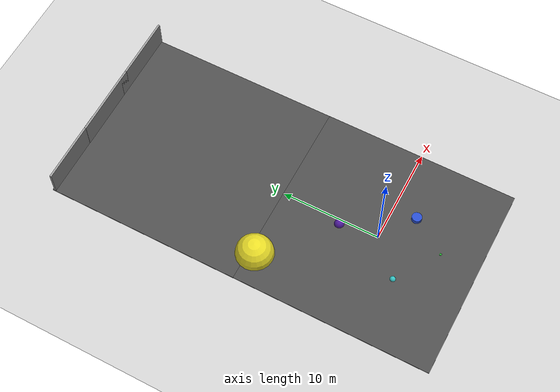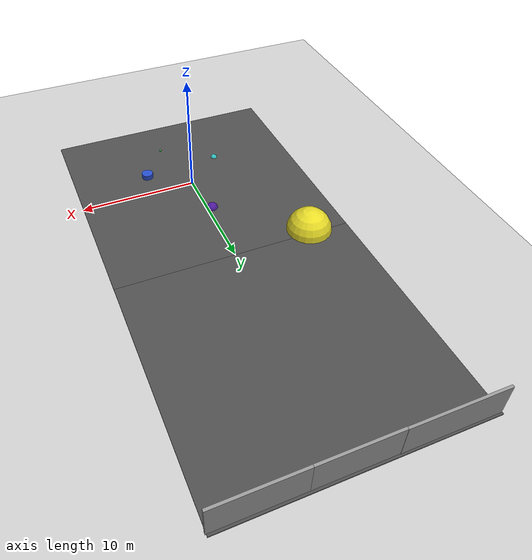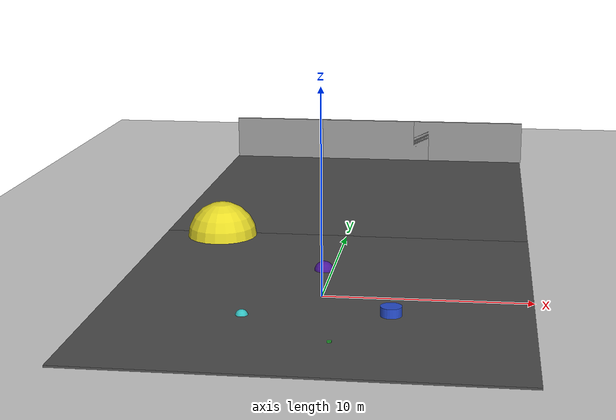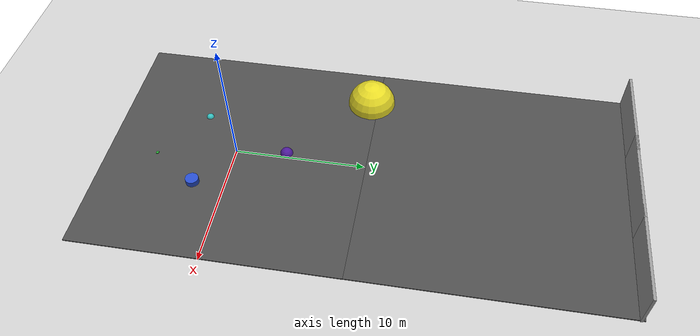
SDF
<sdf version="1.7">
 <world name="default">
  <light name="sun" type="directional">
   <pose>0 0 10 0 -0 0</pose>
   <diffuse>0.8 0.8 0.8 1</diffuse>
   <specular>0.2 0.2 0.2 1</specular>
   <attenuation>
    <range>1000</range>
    <constant>0.9</constant>
    <linear>0.01</linear>
    <quadratic>0.001</quadratic>
   </attenuation>
   <direction>-0.5 0.1 -0.9</direction>
   <spot><inner_angle>0</inner_angle><outer_angle>0</outer_angle><falloff>0</falloff></spot>
  </light>
  <model name="ground_plane">
   <static>1</static>
   <link name="link">
    <collision name="collision">
     <geometry><plane><normal>0 0 1</normal><size>100 100</size></plane></geometry>
     <surface>
      <contact><collide_bitmask>65535</collide_bitmask></contact>
      <friction><ode><mu>100</mu><mu2>50</mu2></ode></friction>
     </surface>
    </collision>
    <visual name="visual">
     <cast_shadows>0</cast_shadows>
     <geometry><plane><normal>0 0 1</normal><size>100 100</size></plane></geometry>
     <material>
      <script><uri>file://media/materials/scripts/gazebo.material</uri><name>Gazebo/Grey</name></script>
     </material>
    </visual>
   </link>
  </model>
  <gravity>0 0 -9.8</gravity>
  <magnetic_field>6e-06 2.3e-05 -4.2e-05</magnetic_field>
  <atmosphere type="adiabatic"/>
  <physics type="ode">
   <max_step_size>0.001</max_step_size>
   <real_time_factor>1</real_time_factor>
   <real_time_update_rate>1000</real_time_update_rate>
  </physics>
  <scene><ambient>0.4 0.4 0.4 1</ambient><background>0.7 0.7 0.7 1</background><shadows>1</shadows></scene>
  <spherical_coordinates>
   <surface_model>EARTH_WGS84</surface_model>
   <latitude_deg>0</latitude_deg>
   <longitude_deg>0</longitude_deg>
   <elevation>0</elevation>
   <heading_deg>0</heading_deg>
  </spherical_coordinates>
  <model name="asphalt_plane">
   <static>1</static>
   <link name="link">
    <collision name="collision"><geometry><box><size>20 20 0.1</size></box></geometry></collision>
    <visual name="visual">
     <cast_shadows>0</cast_shadows>
     <geometry><box><size>20 20 0.1</size></box></geometry>
     <material>
      <script>
       <uri>model://asphalt_plane/materials/scripts</uri>
       <uri>model://asphalt_plane/materials/textures</uri>
       <name>vrc/asphalt</name>
      </script>
     </material>
    </visual>
   </link>
   <pose>-0.055272 0.137270 0 0 -0 0</pose>
  </model>
  <model name="asphalt_plane_0">
   <static>1</static>
   <link name="link">
    <collision name="collision"><geometry><box><size>20 20 0.1</size></box></geometry></collision>
    <visual name="visual">
     <cast_shadows>0</cast_shadows>
     <geometry><box><size>20 20 0.1</size></box></geometry>
     <material>
      <script>
       <uri>model://asphalt_plane/materials/scripts</uri>
       <uri>model://asphalt_plane/materials/textures</uri>
       <name>vrc/asphalt</name>
      </script>
     </material>
    </visual>
   </link>
   <pose>-0.062855 20.0811 0 0 -0 0</pose>
  </model>
  <model name="unit_sphere">
   <pose>-3.247553 -3.080085 0 0 -0 0</pose>
   <link name="link">
    <inertial>
     <mass>1</mass>
     <inertia><ixx>0.1</ixx><ixy>0</ixy><ixz>0</ixz><iyy>0.1</iyy><iyz>0</iyz><izz>0.1</izz></inertia>
    </inertial>
    <collision name="collision"><geometry><sphere><radius>0.3</radius></sphere></geometry></collision>
    <visual name="visual">
     <geometry><sphere><radius>0.3</radius></sphere></geometry>
     <material>
      <script><name>Gazebo/Turquoise</name><uri>file://media/materials/scripts/gazebo.material</uri></script>
     </material>
    </visual>
   </link>
  </model>
  <model name="unit_sphere_1">
   <pose>-0.412534 3.891330 0 0 -0 0</pose>
   <link name="link">
    <inertial>
     <mass>1</mass>
     <inertia><ixx>0.1</ixx><ixy>0</ixy><ixz>0</ixz><iyy>0.1</iyy><iyz>0</iyz><izz>0.1</izz></inertia>
    </inertial>
    <collision name="collision"><geometry><sphere><radius>0.5</radius></sphere></geometry></collision>
    <visual name="visual">
     <geometry><sphere><radius>0.5</radius></sphere></geometry>
     <material>
      <script><name>Gazebo/Indigo</name><uri>file://media/materials/scripts/gazebo.material</uri></script>
     </material>
    </visual>
   </link>
  </model>
  <model name="unit_cylinder">
   <pose>3.474236 -2.422607 0 0 -0 0</pose>
   <link name="link">
    <inertial>
     <mass>1</mass>
     <inertia><ixx>0.145833</ixx><ixy>0</ixy><ixz>0</ixz><iyy>0.145833</iyy><iyz>0</iyz><izz>0.125</izz></inertia>
    </inertial>
    <collision name="collision">
     <geometry><cylinder><radius>0.5</radius><length>1</length></cylinder></geometry>
    </collision>
    <visual name="visual">
     <geometry><cylinder><radius>0.5</radius><length>1</length></cylinder></geometry>
     <material>
      <script><name>Gazebo/Blue</name><uri>file://media/materials/scripts/gazebo.material</uri></script>
     </material>
    </visual>
   </link>
  </model>
  <model name="unit_sphere_0">
   <pose>-6.862030 9.561178 0 0 -0 0</pose>
   <link name="link">
    <inertial>
     <mass>1</mass>
     <inertia><ixx>0.1</ixx><ixy>0</ixy><ixz>0</ixz><iyy>0.1</iyy><iyz>0</iyz><izz>0.1</izz></inertia>
    </inertial>
    <collision name="collision"><geometry><sphere><radius>1.90292</radius></sphere></geometry></collision>
    <visual name="visual">
     <geometry><sphere><radius>1.90292</radius></sphere></geometry>
     <material>
      <script><name>Gazebo/Yellow</name><uri>file://media/materials/scripts/gazebo.material</uri></script>
     </material>
    </visual>
   </link>
  </model>
  <model name="unit_box">
   <pose>1.118575 -5.995068 0 0 -0 0</pose>
   <link name="link">
    <inertial>
     <mass>1</mass>
     <inertia>
      <ixx>0.166667</ixx>
      <ixy>0</ixy>
      <ixz>0</ixz>
      <iyy>0.166667</iyy>
      <iyz>0</iyz>
      <izz>0.166667</izz>
     </inertia>
    </inertial>
    <collision name="collision"><geometry><box><size>0.2 0.2 0.200002</size></box></geometry></collision>
    <visual name="visual">
     <geometry><box><size>0.2 0.2 0.200002</size></box></geometry>
     <material>
      <script><name>Gazebo/Green</name><uri>file://media/materials/scripts/gazebo.material</uri></script>
     </material>
    </visual>
   </link>
  </model>
  <model name="grey_wall">
   <static>1</static>
   <link name="link">
    <pose>0 0 1.4 0 -0 0</pose>
    <collision name="collision"><geometry><box><size>7.5 0.2 2.8</size></box></geometry></collision>
    <visual name="visual">
     <cast_shadows>0</cast_shadows>
     <geometry><box><size>7.5 0.2 2.8</size></box></geometry>
     <material>
      <script>
       <uri>model://grey_wall/materials/scripts</uri>
       <uri>model://grey_wall/materials/textures</uri>
       <name>vrc/grey_wall</name>
      </script>
     </material>
    </visual>
   </link>
   <pose>6.25971 29.8025 0 0 -0 0</pose>
  </model>
  <model name="grey_wall_0">
   <static>1</static>
   <link name="link">
    <pose>0 0 1.4 0 -0 0</pose>
    <collision name="collision"><geometry><box><size>7.5 0.2 2.8</size></box></geometry></collision>
    <visual name="visual">
     <cast_shadows>0</cast_shadows>
     <geometry><box><size>7.5 0.2 2.8</size></box></geometry>
     <material>
      <script>
       <uri>model://grey_wall/materials/scripts</uri>
       <uri>model://grey_wall/materials/textures</uri>
       <name>vrc/grey_wall</name>
      </script>
     </material>
    </visual>
   </link>
   <pose>-6.27015 29.823 0 0 -0 0</pose>
  </model>
  <model name="grey_wall_1">
   <static>1</static>
   <link name="link">
    <pose>0 0 1.4 0 -0 0</pose>
    <collision name="collision"><geometry><box><size>7.5 0.2 2.8</size></box></geometry></collision>
    <visual name="visual">
     <cast_shadows>0</cast_shadows>
     <geometry><box><size>7.5 0.2 2.8</size></box></geometry>
     <material>
      <script>
       <uri>model://grey_wall/materials/scripts</uri>
       <uri>model://grey_wall/materials/textures</uri>
       <name>vrc/grey_wall</name>
      </script>
     </material>
    </visual>
   </link>
   <pose>-0.196802 29.8025 0 0 -0 0</pose>
  </model>
 </world>
</sdf>
